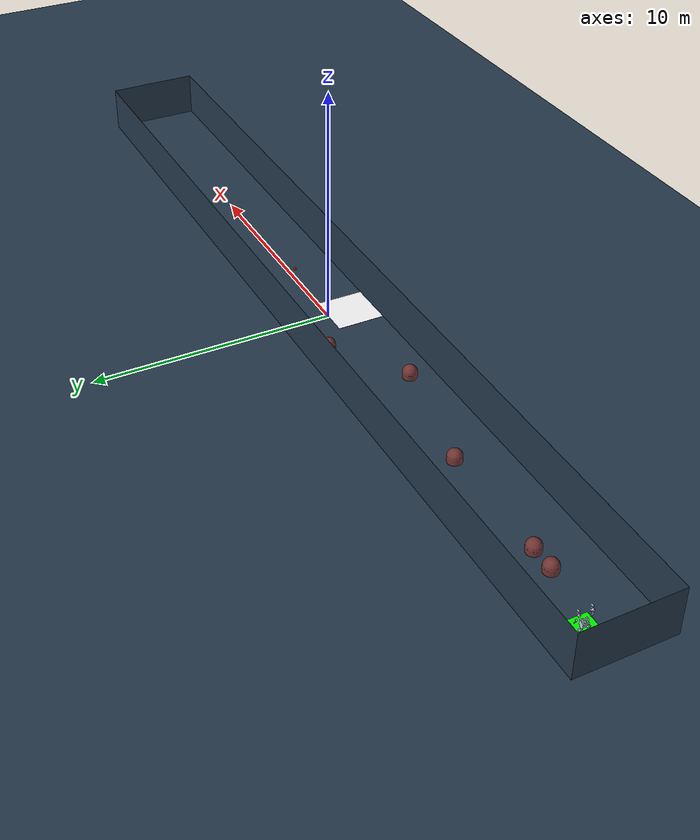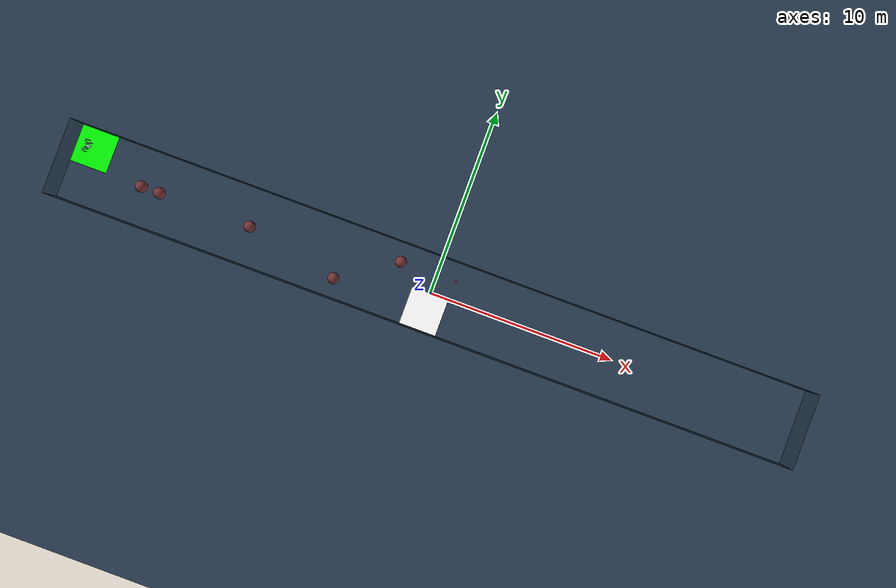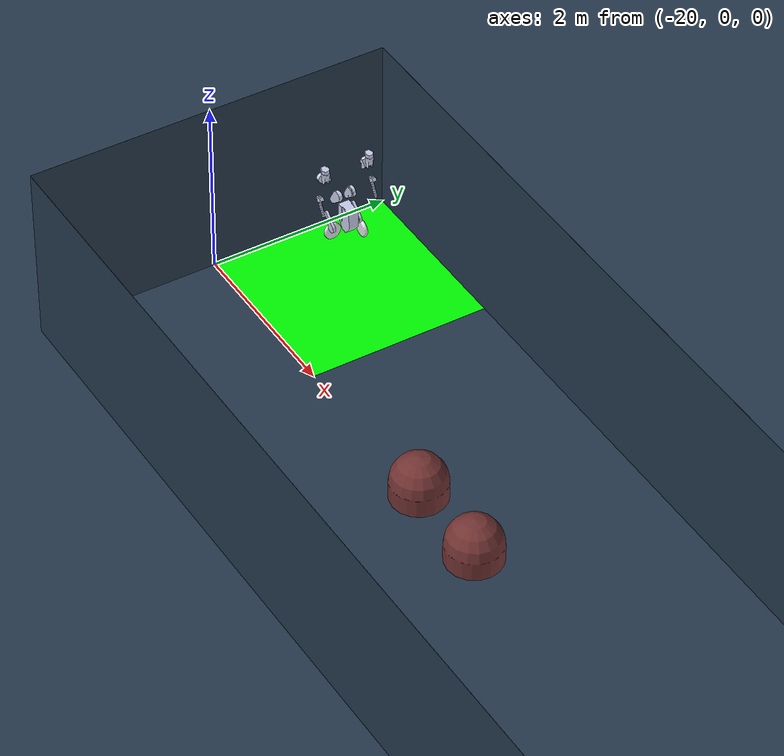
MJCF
<mujoco model="SATYRR_NEW_V4">
    <compiler eulerseq = "zyx" angle="radian" meshdir="satyrr_wholebody/"/>
    <size njmax="500" nconmax="100" />
    <option integrator="RK4" timestep="0.001"/>

	<default>
		<geom contype = '0' conaffinity = '0'/>
		<default class = 'collision-default'>
			<geom contype = '6' conaffinity = '0'/>
		</default>
        <default class = 'collision-group-a'>
            <geom contype = '2' conaffinity = '4'/>
        </default>
        <default class = 'collision-group-b'>
            <geom contype = '4' conaffinity = '2'/>
        </default>
    </default>

    <asset>
        <mesh name="Torso" file="Torso.STL" />
        <mesh name="Thigh_R" file="Thigh_R.STL" />
        <mesh name="Shin_R" file="Shin_R.STL" />
        <mesh name="Wheel_R" file="Wheel_R.STL" />
        <mesh name="Thigh_L" file="Thigh_L.STL" />
        <mesh name="Shin_L" file="Shin_L.STL" />
        <mesh name="Wheel_L" file="Wheel_L.STL" />
        <mesh name="Shoulder_U_L" file="Shoulder_U_L.STL" />
        <mesh name="Shoulder_L" file="Shoulder_L.STL" />
        <mesh name="Arm_L" file="Arm_L.STL" />
        <mesh name="Shank_L" file="Shank_L.STL" />
        <mesh name="Shoulder_U_R" file="Shoulder_U_R.STL" />
        <mesh name="Shoulder_R" file="Shoulder_R.STL" />
        <mesh name="Arm_R" file="Arm_R.STL" />
        <mesh name="Shank_R" file="Shank_R.STL" />
        <texture builtin="checker" height="512" name="texplane" rgb1=".2 .3 .4" rgb2=".1 0.15 0.2" type="2d" width="512"/>
        <material name="floorplane" reflectance="0.5" texrepeat="1 1" texture="texplane" texuniform="true"/>
        <material name="matplane" reflectance="0.3" texture="texplane" texrepeat="1 1" texuniform="true"/>
        <material name="table_mat" specular="0" shininess="0.5" reflectance="0" rgba="0.93 0.93 0.93 1"></material>
    </asset>

    <worldbody>
        <geom class = "collision-default" name="floor0" pos="0. 0. 0" size="0 0 1" type="plane" condim="3" material="floorplane"></geom>
		<light directional="true" ambient="0.2 0.2 0.2" diffuse="0.8 0.8 0.8" specular="0.3 0.3 0.3" castshadow="false" pos="0 0 4" dir="0 0 -1" name="light0"></light>

        <body name="eye_ray_location" pos="1 1 2.0">
            <geom name="box" type="sphere" size=".05" contype = '0' conaffinity = '0' rgba="1 0 0 1.0"/>
        </body>

		<!-- camera: front view -->
        <camera name="camera1" mode="targetbody" target="torso"/>
        <body name="wall1_body" pos="20 0 1">
            <geom name="wall1_geom" class = "collision-default" type="plane" size="2 1 1" pos="0 0 0" quat="0.5 -0.5 -0.5 0.5" material="matplane" condim="1"/>
        </body>
        <body name="wall2_body" pos="0 2 1">
            <geom name="wall2_geom" class = "collision-default" type="plane" size="20 1 1" pos="0 0 0" quat="0.7071 0.7071 0 0 " material="matplane" condim="1"/>
        </body>
        <body name="wall3_body" pos="-20 0 1">
            <geom name="wall3_geom" class = "collision-default" type="plane" size="2 1 1" pos="0 0 0" quat="0.5 0.5 0.5 0.5" material="matplane" condim="1"/>
        </body>
        <body name="wall4_body" pos="0 -2 1">
            <geom name="wall4_geom" class = "collision-default" type="plane" size="20 1 1" pos="0 0 0" quat=" 0 0 0.7071 0.7071 " material="matplane" condim="1"/>
        </body>

        <body name="start_location_body" pos="-19 1 0">
            <geom name="start_location_geom" size="1 1 0.001" type="box" rgba="0 1 0 1" />
        </body>
        <body name="end_location_body" pos="0 -1 0">
            <geom name="end_location_geom" size="1 1 0.001" type="box" rgba="1 1 1 1" />
        </body>

        <body name="obstacle_6_body" pos="-2 1 0.0">
            <geom name="obstacle_6_geom" class = "collision-default" fromto="0 0 0 0 0 0.2" size="0.3" type="capsule" rgba="0.45 0.2 0.2 1" />
        </body>
        <body name="obstacle_7_body" pos="-5 -1 0.0">
            <geom name="obstacle_7_geom" class = "collision-default" fromto="0 0 0 0 0 0.2" size="0.3" type="capsule" rgba="0.45 0.2 0.2 1" />
        </body>
        <body name="obstacle_8_body" pos="-10 0 0.0">
            <geom name="obstacle_8_geom" class = "collision-default" fromto="0 0 0 0 0 0.2" size="0.3" type="capsule" rgba="0.45 0.2 0.2 1" />
        </body>
        <body name="obstacle_9_body" pos="-15 0 0.0">
            <geom name="obstacle_9_geom" class = "collision-default" fromto="0 0 0 0 0 0.2" size="0.3" type="capsule" rgba="0.45 0.2 0.2 1" />
        </body>
        <body name="obstacle_10_body" pos="-16 0 0.0">
            <geom name="obstacle_10_geom" class = "collision-default" fromto="0 0 0 0 0 0.2" size="0.3" type="capsule" rgba="0.45 0.2 0.2 1" />
        </body>

        <body name="torso" pos="-19 1.0 0.4869">

            <site name="camera_vr" pos="0 0 0.7"/>
            <joint axis = "1 0 0" pos = "0 0 0" name = "move_x" type = "slide" limited = "false"/>
			<joint axis = "0 1 0" pos = "0 0 0" name = "move_y" type = "slide" limited = "false"/>
			<joint axis = "0 0 1" pos = "0 0 0" name = "move_z" type = "slide" limited = "false"/>
			<joint axis = "1 0 0" pos = "0 0 0" name = "rotate_roll" type = "hinge" limited = "false"/>
			<joint axis = "0 1 0" pos = "0 0 0" name = "rotate_pitch" type = "hinge" limited = "false"/>
			<joint axis = "0 0 1" pos = "0 0 0" name = "rotate_yaw" type = "hinge" limited = "false"/>
            <geom class = 'collision-group-a' friction="0.9" type="mesh" rgba="0.79216 0.81961 0.93333 1" mesh="Torso" mass="4.05" />

            <body name="Thigh_R" pos="-0.06625 0 0.36">
                <inertial pos="0 -0.080175 -0.0380315" quat="0.707107 0 0 0.707107" mass="0.904864" diaginertia="0.00325713 0.00280128 0.000871858" />
                <joint name="Hip_R" pos="0 0 0" axis="0 -1 0" />
                <geom class = 'collision-group-a' type="mesh" rgba="0.792157 0.819608 0.933333 1" mesh="Thigh_R" />
                <body name="Shin_R" pos="0 -0.080175 -0.15">
                    <inertial pos="0 0 -0.0789246" quat="0.707107 0 0 0.707107" mass="0.394882" diaginertia="0.00112813 0.00112607 0.000173116" />
                    <joint name="Knee_R" pos="0 0 0" axis="0 -1 0" />
                    <geom class = 'collision-group-a' type="mesh" rgba="0.792157 0.819608 0.933333 1" mesh="Shin_R" />
                    <body name="Wheel_R" pos="0 0 -0.15" quat="0.707107 0 0 -0.707107">
                        <inertial pos="0.0356257 0 0" mass="0.52599" diaginertia="0.000948894 0.000489944 0.000489944" />
                        <joint name="Ankle_R" pos="0 0 0" axis="1 0 0" />
                        <geom class = 'collision-group-a' type="mesh" rgba="0.898039 0.917647 0.929412 1" mesh="Wheel_R" />
                    </body>
                </body>
            </body>
            <body name="Thigh_L" pos="-0.06625 0 0.36">
                <inertial pos="0 0.080175 -0.0380315" quat="0.707107 0 0 0.707107" mass="0.904864" diaginertia="0.00325713 0.00280128 0.000871858" />
                <joint name="Hip_L" pos="0 0 0" axis="0 -1 0" />
                <geom class = 'collision-group-b' type="mesh" rgba="0.792157 0.819608 0.933333 1" mesh="Thigh_L" />
                <body name="Shin_L" pos="0 0.080175 -0.15">
                    <inertial pos="0 0 -0.0789246" quat="0.707107 0 0 0.707107" mass="0.394882" diaginertia="0.00112813 0.00112607 0.000173116" />
                    <joint name="Knee_L" pos="0 0 0" axis="0 -1 0" />
                    <geom class = 'collision-group-b' type="mesh" rgba="0.792157 0.819608 0.933333 1" mesh="Shin_L" />
                    <body name="Wheel_L" pos="0 0 -0.15">
                        <inertial pos="0 0.0363743 0" quat="0.707107 0 0 0.707107" mass="0.52599" diaginertia="0.000948894 0.000489944 0.000489944" />
                        <joint name="Ankle_L" pos="0 0 0" axis="0 -1 0" />
                        <geom class = 'collision-group-b' type="mesh" rgba="0.898039 0.917647 0.929412 1" mesh="Wheel_L" />
                    </body>
                </body>
            </body>
            <body name="Shoulder_U_L" pos="-0.06625 0.13274 0.48068">
                <inertial pos="5.98242e-08 -3.82379e-09 0.0467603" quat="0.5 0.5 0.5 0.5" mass="0.246892" diaginertia="0.0012863 0.00103844 0.00030284" />
                <geom class = 'collision-group-b' type="mesh" rgba="0.792157 0.819608 0.933333 1" mesh="Shoulder_U_L" />
                <body name="Shoulder_L" pos="0 0 0.114214">
                    <inertial pos="-7.6505e-09 4.57848e-09 2.98572e-10" quat="0.500001 0.499999 0.499999 0.500001" mass="0.225611" diaginertia="0.000280653 0.000166998 0.000150663" />
                    <geom class = 'collision-group-b' type="mesh" rgba="0.792157 0.819608 0.933333 1" mesh="Shoulder_L" />
                    <body name="Arm_L" pos="0 0 0">
                        <inertial pos="0 0.0494924 -0.061196" quat="0.707074 0.00680441 -0.00680441 0.707074" mass="0.584971" diaginertia="0.00283895 0.00259254 0.000369078" />
                        <geom class = 'collision-group-b' type="mesh" rgba="0.792157 0.819608 0.933333 1" mesh="Arm_L" />
                        <body name="Shank_L" pos="0 0.05082 -0.204">
                            <inertial pos="9.76797e-09 0 -0.0687371" quat="0.707107 0 0 0.707107" mass="0.111225" diaginertia="0.000216628 0.00021518 1.39816e-05" />
                            <geom class = 'collision-group-b' type="mesh" rgba="0.792157 0.819608 0.933333 1" mesh="Shank_L" />
                        </body>
                    </body>
                </body>
            </body>
            <body name="Shoulder_U_R" pos="-0.06625 -0.13274 0.48068">
                <inertial pos="5.98242e-08 -3.82379e-09 0.0467603" quat="0.5 0.5 0.5 0.5" mass="0.246892" diaginertia="0.0012863 0.00103844 0.00030284" />
                <geom class = 'collision-group-a' type="mesh" rgba="0.792157 0.819608 0.933333 1" mesh="Shoulder_U_R" />
                <body name="Shoulder_R" pos="0 0 0.114214">
                    <inertial pos="-7.6505e-09 4.57848e-09 2.98572e-10" quat="0.500001 0.499999 0.499999 0.500001" mass="0.225611" diaginertia="0.000280653 0.000166998 0.000150663" />
                    <geom class = 'collision-group-a' type="mesh" rgba="0.792157 0.819608 0.933333 1" mesh="Shoulder_R" />
                    <body name="Arm_R" pos="0 0 0">
                        <inertial pos="0 -0.0494924 -0.061196" quat="0.707074 -0.00680441 0.00680441 0.707074" mass="0.584971" diaginertia="0.00283895 0.00259254 0.000369078" />
                        <geom class = 'collision-group-a' type="mesh" rgba="0.792157 0.819608 0.933333 1" mesh="Arm_R" />
                        <body name="Shank_R" pos="0 -0.05082 -0.204">
                            <inertial pos="-9.76797e-09 0 -0.0687371" quat="0.707107 0 0 0.707107" mass="0.111225" diaginertia="0.000216628 0.00021518 1.39816e-05" />
                            <geom class = 'collision-group-a' type="mesh" rgba="0.792157 0.819608 0.933333 1" mesh="Shank_R" />
                        </body>
                    </body>
                </body>
            </body>
        </body>

    </worldbody>

    <actuator>
        <motor ctrllimited="true" ctrlrange="-100.0 100.0" gear="1" joint="Hip_L"/>
        <motor ctrllimited="true" ctrlrange="-100.0 100.0" gear="1" joint="Knee_L"/>
        <motor ctrllimited="true" ctrlrange="-100.0 100.0" gear="1" joint="Ankle_L"/>
        <motor ctrllimited="true" ctrlrange="-100.0 100.0" gear="1" joint="Hip_R"/>
        <motor ctrllimited="true" ctrlrange="-100.0 100.0" gear="1" joint="Knee_R"/>
        <motor ctrllimited="true" ctrlrange="-100.0 100.0" gear="1" joint="Ankle_R"/>
    </actuator>
</mujoco>
